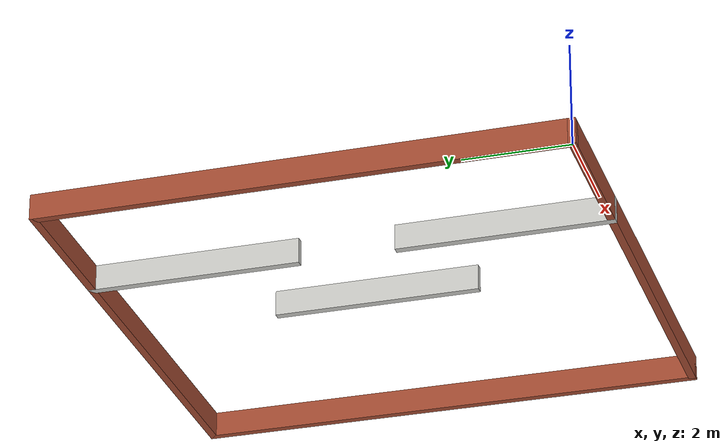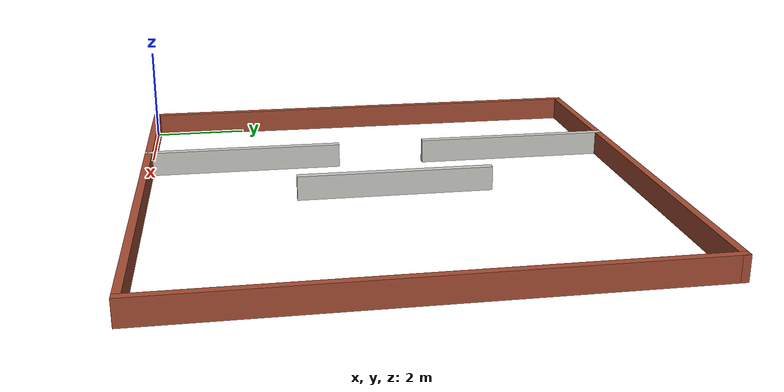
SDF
<?xml version='1.0'?>
<sdf version='1.7'>
  <model name='map_lvl1'>
    <pose>5 5 0 0 -0 0</pose>
    <link name='Wall_0'>
      <collision name='Wall_0_Collision'>
        <geometry>
          <box>
            <size>10.15 0.15 0.5</size>
          </box>
        </geometry>
        <pose>0 0 0.25 0 -0 0</pose>
      </collision>
      <visual name='Wall_0_Visual'>
        <pose>0 0 0.25 0 -0 0</pose>
        <geometry>
          <box>
            <size>10.15 0.15 0.5</size>
          </box>
        </geometry>
        <material>
          <script>
            <uri>file://media/materials/scripts/gazebo.material</uri>
            <name>Gazebo/Bricks</name>
          </script>
          <ambient>1 1 1 1</ambient>
        </material>
        <meta>
          <layer>0</layer>
        </meta>
      </visual>
      <pose>-0 -5 0 0 -0 0</pose>
    </link>
    <link name='Wall_10'>
      <collision name='Wall_10_Collision'>
        <geometry>
          <box>
            <size>4.15 0.15 0.5</size>
          </box>
        </geometry>
        <pose>0 0 0.25 0 -0 0</pose>
      </collision>
      <visual name='Wall_10_Visual'>
        <pose>0 0 0.25 0 -0 0</pose>
        <geometry>
          <box>
            <size>4.15 0.15 0.5</size>
          </box>
        </geometry>
        <material>
          <script>
            <uri>file://media/materials/scripts/gazebo.material</uri>
            <name>Gazebo/CeilingTiled</name>
          </script>
          <ambient>1 0.764706 0.305882 1</ambient>
        </material>
        <meta>
          <layer>0</layer>
        </meta>
      </visual>
      <pose>-2 -3 0 0 -0 1.5708</pose>
    </link>
    <link name='Wall_13'>
      <collision name='Wall_13_Collision'>
        <geometry>
          <box>
            <size>4.15 0.15 0.5</size>
          </box>
        </geometry>
        <pose>0 0 0.25 0 -0 0</pose>
      </collision>
      <visual name='Wall_13_Visual'>
        <pose>0 0 0.25 0 -0 0</pose>
        <geometry>
          <box>
            <size>4.15 0.15 0.5</size>
          </box>
        </geometry>
        <material>
          <script>
            <uri>file://media/materials/scripts/gazebo.material</uri>
            <name>Gazebo/CeilingTiled</name>
          </script>
          <ambient>1 0.764706 0.305882 1</ambient>
        </material>
        <meta>
          <layer>0</layer>
        </meta>
      </visual>
      <pose>-2 3 0 0 -0 -1.5708</pose>
    </link>
    <link name='Wall_15'>
      <collision name='Wall_15_Collision'>
        <geometry>
          <box>
            <size>4 0.15 0.5</size>
          </box>
        </geometry>
        <pose>0 0 0.25 0 -0 0</pose>
      </collision>
      <visual name='Wall_15_Visual'>
        <pose>0 0 0.25 0 -0 0</pose>
        <geometry>
          <box>
            <size>4 0.15 0.5</size>
          </box>
        </geometry>
        <material>
          <script>
            <uri>file://media/materials/scripts/gazebo.material</uri>
            <name>Gazebo/CeilingTiled</name>
          </script>
          <ambient>1 0.764706 0.305882 1</ambient>
        </material>
        <meta>
          <layer>0</layer>
        </meta>
      </visual>
      <pose>-0 0.021 0 0 -0 1.5708</pose>
    </link>
    <link name='Wall_2'>
      <collision name='Wall_2_Collision'>
        <geometry>
          <box>
            <size>10.15 0.15 0.5</size>
          </box>
        </geometry>
        <pose>0 0 0.25 0 -0 0</pose>
      </collision>
      <visual name='Wall_2_Visual'>
        <pose>0 0 0.25 0 -0 0</pose>
        <geometry>
          <box>
            <size>10.15 0.15 0.5</size>
          </box>
        </geometry>
        <material>
          <script>
            <uri>file://media/materials/scripts/gazebo.material</uri>
            <name>Gazebo/Bricks</name>
          </script>
          <ambient>1 1 1 1</ambient>
        </material>
        <meta>
          <layer>0</layer>
        </meta>
      </visual>
      <pose>-5 -0 0 0 -0 1.5708</pose>
    </link>
    <link name='Wall_4'>
      <collision name='Wall_4_Collision'>
        <geometry>
          <box>
            <size>10.15 0.15 0.5</size>
          </box>
        </geometry>
        <pose>0 0 0.25 0 -0 0</pose>
      </collision>
      <visual name='Wall_4_Visual'>
        <pose>0 0 0.25 0 -0 0</pose>
        <geometry>
          <box>
            <size>10.15 0.15 0.5</size>
          </box>
        </geometry>
        <material>
          <script>
            <uri>file://media/materials/scripts/gazebo.material</uri>
            <name>Gazebo/Bricks</name>
          </script>
          <ambient>1 1 1 1</ambient>
        </material>
        <meta>
          <layer>0</layer>
        </meta>
      </visual>
      <pose>5 -0 0 0 -0 1.5708</pose>
    </link>
    <link name='Wall_6'>
      <collision name='Wall_6_Collision'>
        <geometry>
          <box>
            <size>10.15 0.15 0.5</size>
          </box>
        </geometry>
        <pose>0 0 0.25 0 -0 0</pose>
      </collision>
      <visual name='Wall_6_Visual'>
        <pose>0 0 0.25 0 -0 0</pose>
        <geometry>
          <box>
            <size>10.15 0.15 0.5</size>
          </box>
        </geometry>
        <material>
          <script>
            <uri>file://media/materials/scripts/gazebo.material</uri>
            <name>Gazebo/Bricks</name>
          </script>
          <ambient>1 1 1 1</ambient>
        </material>
        <meta>
          <layer>0</layer>
        </meta>
      </visual>
      <pose>-0 5 0 0 -0 0</pose>
    </link>
    <static>1</static>
  </model>
</sdf>
